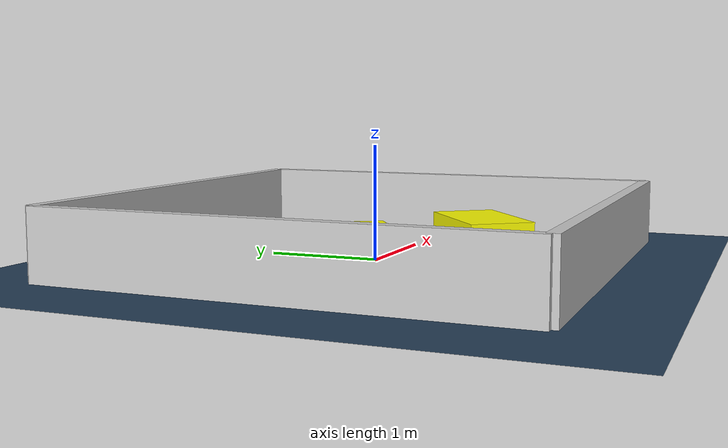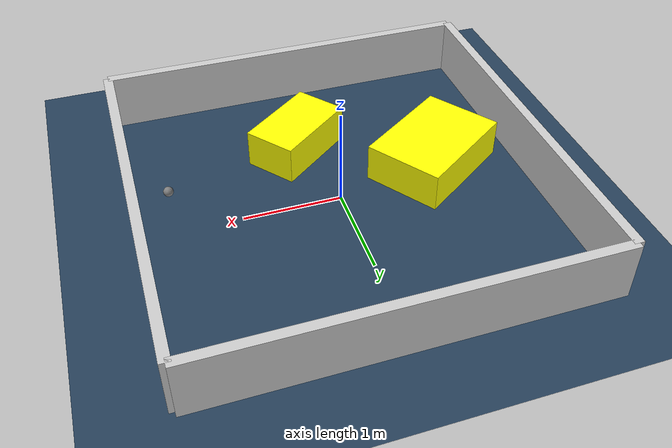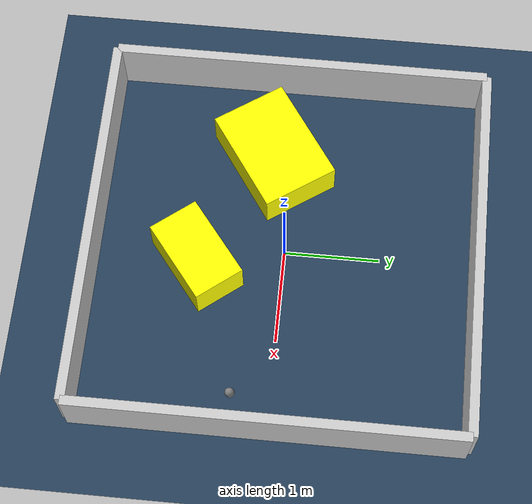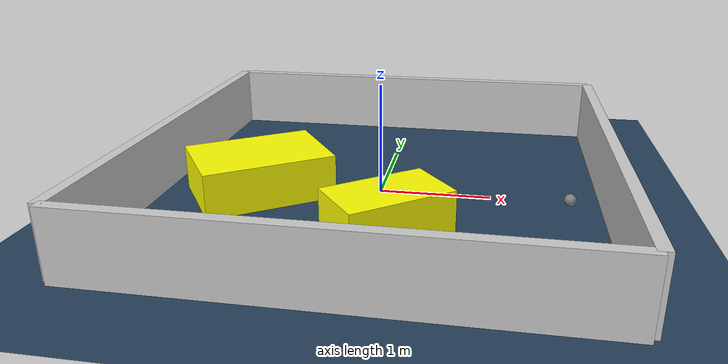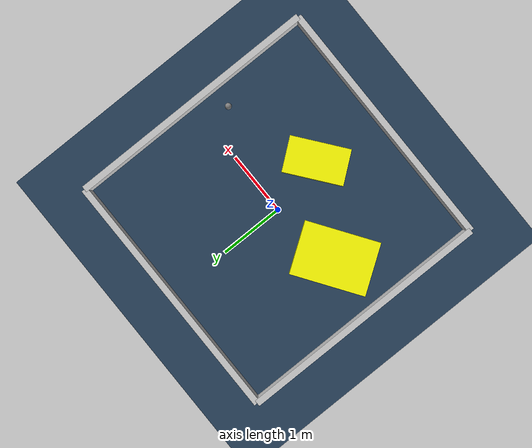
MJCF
<?xml version="1.0" ?>
<mujoco model="generated_environment">
  <option timestep="0.01" integrator="RK4" cone="elliptic"/>
  <default>
    <geom density="1"/>
  </default>
  <asset>
    <texture builtin="gradient" height="3072" rgb1="0.3 0.5 0.7" rgb2="0 0 0" type="skybox" width="512"/>
    <texture builtin="checker" height="300" mark="edge" markrgb="0.8 0.8 0.8" name="groundplane" rgb1="0.2 0.3 0.4" rgb2="0.1 0.2 0.3" type="2d" width="300"/>
    <material name="groundplane" reflectance="0.2" texrepeat="5 5" texture="groundplane" texuniform="true"/>
    <material name="robot" rgba="0.0 1.0 0.0 1"/>
  </asset>
  <worldbody>
    <light dir="0 0 -1" directional="true" pos="0 0 1.5"/>
    <geom condim="4" friction="1.0 0.005 0.001" material="groundplane" name="floor" size="0 0 0.05" type="plane"/>
    <body name="walls">
      <geom name="wall_1" condim="4" pos="-2.0 0.0 0.3" rgba="0.800000011920929 0.800000011920929 0.800000011920929 1.0" size="0.05 2.0 0.3" type="box"/>
      <geom name="wall_2" condim="4" pos="2.0 0.0 0.3" rgba="0.800000011920929 0.800000011920929 0.800000011920929 1.0" size="0.05 2.0 0.3" type="box"/>
      <geom name="wall_3" condim="4" pos="0.0 -2.0 0.3" rgba="0.800000011920929 0.800000011920929 0.800000011920929 1.0" size="2.0 0.05 0.3" type="box"/>
      <geom name="wall_4" condim="4" pos="0.0 2.0 0.3" rgba="0.800000011920929 0.800000011920929 0.800000011920929 1.0" size="2.0 0.05 0.3" type="box"/>
    </body>
    <body name="robot">
      <joint name="joint_x" type="slide" pos="0 0 0" axis="1 0 0"/>
      <joint name="joint_y" type="slide" pos="0 0 0" axis="0 1 0"/>
      <geom name="robot" type="sphere" pos="1.6482304411675863 -0.39593405868259546 0.2" size="0.05" mass="5." friction="1.0 0.005 0.0001" condim="4"/>
      <site name="sensor_ball"/>
    </body>
    <body name="obstacle_1_movable">
      <geom name="obstacle_1_movable" condim="4" pos="0.20482230306132787 -0.8985695274225762 0.2" euler="0 0 218.02892671932236" friction="1.0 0.005 0.001" rgba="1 1 0 1" size="0.4651425813344748 0.2766980462604872 0.2" type="box" mass="0.1"/>
      <joint type="free"/>
    </body>
    <body name="obstacle_2_movable">
      <geom name="obstacle_2_movable" condim="4" pos="-1.0802308668958056 -0.20898361284982192 0.2" euler="0 0 34.48656152741959" friction="1.0 0.005 0.001" rgba="1 1 0 1" size="0.5825019452994749 0.41267392593088614 0.2" type="box" mass="0.1"/>
      <joint type="free"/>
    </body>
  </worldbody>
  <actuator>
    <motor name="actuator_x" joint="joint_x" gear="1" ctrlrange="-1 1"/>
    <motor name="actuator_y" joint="joint_y" gear="1" ctrlrange="-1 1"/>
  </actuator>
</mujoco>
